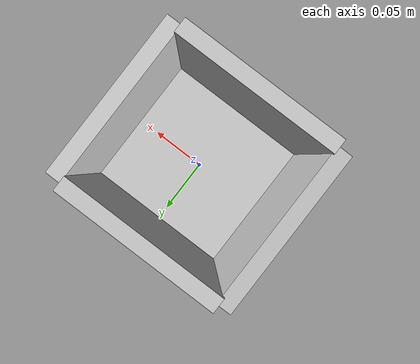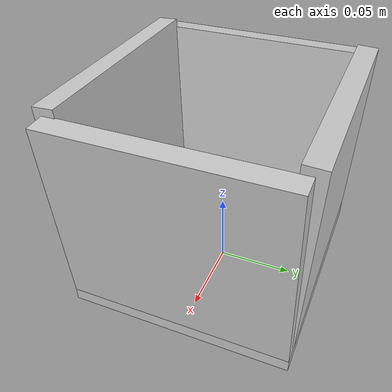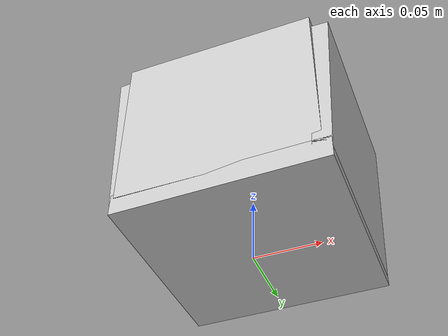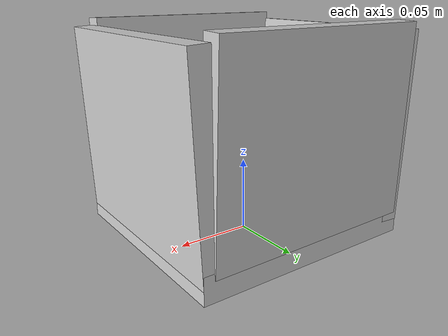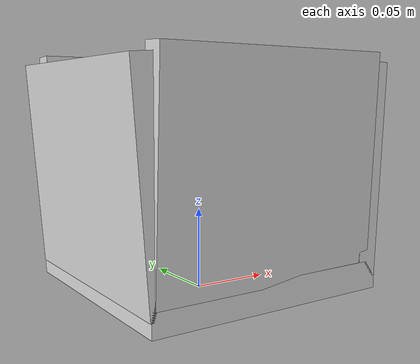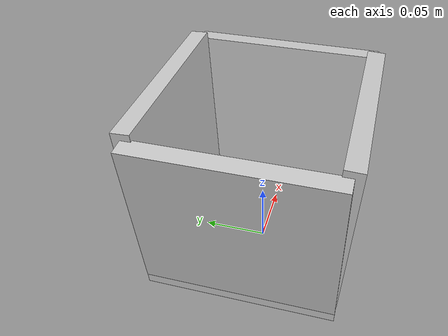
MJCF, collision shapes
<mujoco model="basket">
  <asset>
  <texture file="texture.png" name="tex-basket" type="2d" />
  <material name="basket" reflectance="0.5" texrepeat="1 1" texture="tex-basket" texuniform="false" />
  <mesh file="visual/basket_vis.msh" name="basket_vis" scale="1.0 1.0 1.0" /></asset>
  <worldbody>
    <body>
      <body name="object">
      <site type="box" pos="-0.00000 -0.00000 0.07185" quat="0.00000 0.00000 0.00000 1.00000" size="0.06108 0.06108 0.06949" group="0" rgba="0.8 0 0 0" name="contain_region"/>
      <geom solimp="0.998 0.998 0.001" solref="0.001 1" density="100" friction="0.95 0.3 0.1" type="mesh" mesh="basket_vis" conaffinity="0" contype="0" group="1" material="basket" /><geom solimp="0.998 0.998 0.001" solref="0.001 1" density="100" friction="0.95 0.3 0.1" type="box" pos="0.00251 -0.00000 0.01308" quat="0.70880 -0.00000 0.70541 -0.00000" size="0.00850 0.07240 0.07658" group="0" rgba="0.8 0.8 0.8 0.3" /><geom solimp="0.998 0.998 0.001" solref="0.001 1" density="100" friction="0.95 0.3 0.1" type="box" pos="-0.07265 -0.00000 0.07657" quat="0.02672 -0.02672 0.70660 0.70660" size="0.00667 0.06368 0.07240" group="0" rgba="0.8 0.8 0.8 0.3" /><geom solimp="0.998 0.998 0.001" solref="0.001 1" density="100" friction="0.95 0.3 0.1" type="box" pos="0.00047 -0.06855 0.08177" quat="0.51263 -0.49025 0.50956 -0.48704" size="0.00667 0.06368 0.07240" group="0" rgba="0.8 0.8 0.8 0.3" /><geom solimp="0.998 0.998 0.001" solref="0.001 1" density="100" friction="0.95 0.3 0.1" type="box" pos="-0.00020 0.06909 0.08177" quat="0.48794 -0.51043 -0.48935 0.51177" size="0.00667 0.06368 0.07240" group="0" rgba="0.8 0.8 0.8 0.3" /><geom solimp="0.998 0.998 0.001" solref="0.001 1" density="100" friction="0.95 0.3 0.1" type="box" pos="0.07557 0.00000 0.07657" quat="0.01765 0.01765 -0.70689 0.70689" size="0.00667 0.06368 0.07240" group="0" rgba="0.8 0.8 0.8 0.3" /></body>
      <site rgba="0 0 0 0" size="0.005" pos="0 0 -0.0240" name="bottom_site" />
      <site rgba="0 0 0 0" size="0.005" pos="0 0 0.04" name="top_site" />
      <site rgba="0 0 0 0" size="0.005" pos="0.025 0.025 0" name="horizontal_radius_site" />
    </body>
  </worldbody>
</mujoco>
